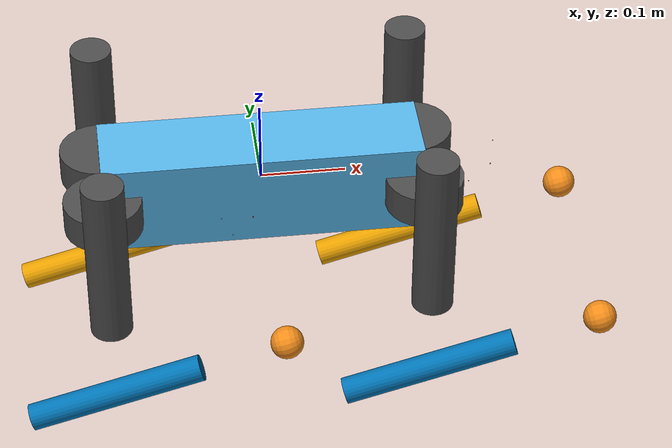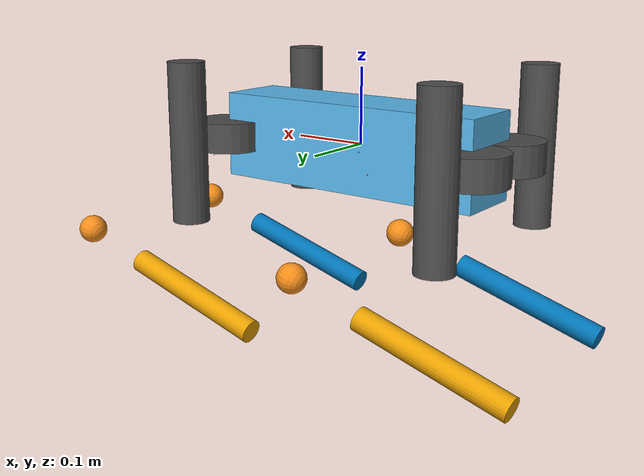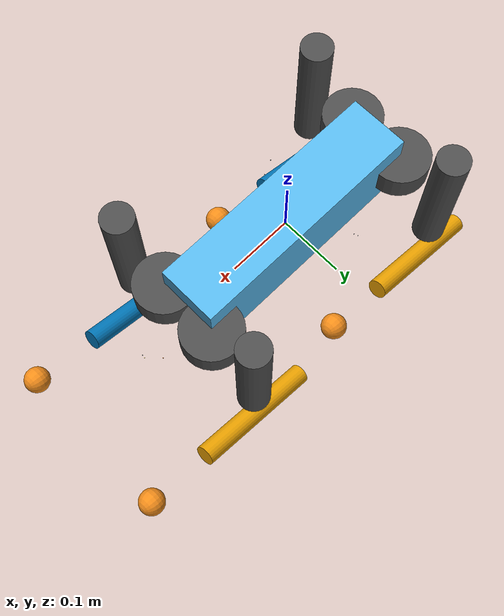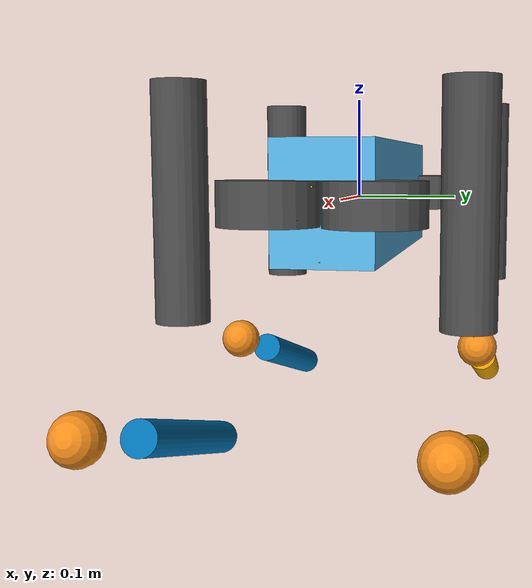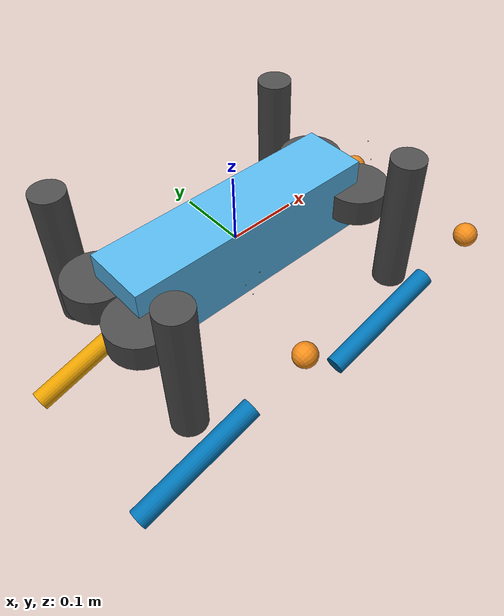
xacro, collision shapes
<?xml version="1.0" ?>
<!-- |    ROS2 Compatible Go1 Robot URDF                                                | -->
<!-- |    Gazebo Harmonic + ros2_control                                               | -->
<!-- |    完整无省略版 - Unitree Go1 四足机器人                                       | -->
<robot name="go1" xmlns:xacro="http://wiki.ros.org/xacro">

  <!-- 包含参数文件 -->
  <xacro:include filename="$(find go1_description)/xacro/go1_urdf_parameter.xacro" />

  <!-- 常量定义 -->
  <!-- PI is already defined in the parameter file -->

  <!-- ===================== 基础材料定义 ===================== -->
  <material name="black">
    <color rgba="0.0 0.0 0.0 1.0"/>
  </material>
  <material name="blue">
    <color rgba="0.0 0.0 0.8 1.0"/>
  </material>
  <material name="green">
    <color rgba="0.0 0.8 0.0 1.0"/>
  </material>
  <material name="grey">
    <color rgba="0.2 0.2 0.2 1.0"/>
  </material>
  <material name="silver">
    <color rgba="0.9137 0.9137 0.8471 1.0"/>
  </material>
  <material name="orange">
    <color rgba="1.0 0.4235 0.0392 1.0"/>
  </material>
  <material name="brown">
    <color rgba="0.8706 0.8118 0.7647 1.0"/>
  </material>
  <material name="red">
    <color rgba="0.8 0.0 0.0 1.0"/>
  </material>
  <material name="white">
    <color rgba="1.0 1.0 1.0 1.0"/>
  </material>

  <!-- ===================== ROS2 CONTROL 核心插件 ===================== -->
  <gazebo>
    <plugin filename="libgazebo_ros2_control.so" name="gazebo_ros2_control">
      <robot_param>robot_description</robot_param>
      <robot_param_node>robot_state_publisher</robot_param_node>
      <parameters>$(find go1_description)/config/robot_control.yaml</parameters>
    </plugin>
  </gazebo>

  <!-- ===================== 外力施加插件 (ROS2) ===================== -->
  <gazebo>
    <plugin filename="libgazebo_ros_force.so" name="gazebo_ros_force">
      <body_name>trunk</body_name>
      <topic_name>${topic_force}</topic_name>
      <ros2>true</ros2>
    </plugin>
  </gazebo>

  <!-- ===================== IMU 传感器 (ROS2) ===================== -->
  <gazebo reference="imu_link">
    <gravity>true</gravity>
    <sensor name="imu_sensor" type="imu">
      <always_on>true</always_on>
      <update_rate>${imu_update_rate}</update_rate>
      <visualize>${imu_visualize}</visualize>
      <plugin filename="libgazebo_ros2_imu.so" name="imu_plugin">
        <frame_id>imu_link</frame_id>
        <topic_name>${topic_imu}</topic_name>
        <update_rate>${imu_update_rate}.0</update_rate>
        <angular_velocity_stdev>0.0</angular_velocity_stdev>
        <linear_acceleration_stdev>0.0</linear_acceleration_stdev>
        <orientation_stdev>0.0</orientation_stdev>
      </plugin>
      <pose>0 0 0 0 0 0</pose>
    </sensor>
  </gazebo>

  <!-- ===================== 深度相机 (ROS2) ===================== -->
  <gazebo reference="camera_face">
    <sensor name="camera_face_camera" type="depth">
      <update_rate>${camera_update_rate}</update_rate>
      <camera>
        <horizontal_fov>${camera_horizontal_fov}</horizontal_fov>
        <image>
          <width>${camera_image_width}</width>
          <height>${camera_image_height}</height>
          <format>R8G8B8</format>
        </image>
        <clip>
          <near>${camera_near_clip}</near>
          <far>${camera_far_clip}</far>
        </clip>
      </camera>
      <plugin filename="libgazebo_ros2_camera.so" name="camera_face_controller">
        <frame_name>camera_optical_face</frame_name>
        <camera_name>camera_face</camera_name>
        <image_topic>/camera_face/${topic_camera_color}</image_topic>
        <camera_info_topic>/camera_face/color/camera_info</camera_info_topic>
        <depth_image_topic>/camera_face/${topic_camera_depth}</depth_image_topic>
        <depth_camera_info_topic>/camera_face/depth/camera_info</depth_camera_info_topic>
        <point_cloud_topic>/camera_face/${topic_camera_points}</point_cloud_topic>
        <min_depth>${camera_min_depth}</min_depth>
        <max_depth>${camera_max_depth}</max_depth>
      </plugin>
    </sensor>
  </gazebo>

  <gazebo reference="camera_chin">
    <sensor name="camera_chin_camera" type="depth">
      <update_rate>${camera_update_rate}</update_rate>
      <camera>
        <horizontal_fov>${camera_horizontal_fov}</horizontal_fov>
        <image>
          <width>${camera_image_width}</width>
          <height>${camera_image_height}</height>
          <format>R8G8B8</format>
        </image>
        <clip>
          <near>${camera_near_clip}</near>
          <far>${camera_far_clip}</far>
        </clip>
      </camera>
      <plugin filename="libgazebo_ros2_camera.so" name="camera_chin_controller">
        <frame_name>camera_optical_chin</frame_name>
        <camera_name>camera_chin</camera_name>
        <image_topic>/camera_chin/${topic_camera_color}</image_topic>
        <camera_info_topic>/camera_chin/color/camera_info</camera_info_topic>
        <depth_image_topic>/camera_chin/${topic_camera_depth}</depth_image_topic>
        <depth_camera_info_topic>/camera_chin/depth/camera_info</depth_camera_info_topic>
        <point_cloud_topic>/camera_chin/${topic_camera_points}</point_cloud_topic>
        <min_depth>${camera_min_depth}</min_depth>
        <max_depth>${camera_max_depth}</max_depth>
      </plugin>
    </sensor>
  </gazebo>

  <gazebo reference="camera_left">
    <sensor name="camera_left_camera" type="depth">
      <update_rate>${camera_update_rate}</update_rate>
      <camera>
        <horizontal_fov>${camera_horizontal_fov}</horizontal_fov>
        <image>
          <width>${camera_image_width}</width>
          <height>${camera_image_height}</height>
          <format>R8G8B8</format>
        </image>
        <clip>
          <near>${camera_near_clip}</near>
          <far>${camera_far_clip}</far>
        </clip>
      </camera>
      <plugin filename="libgazebo_ros2_camera.so" name="camera_left_controller">
        <frame_name>camera_optical_left</frame_name>
        <camera_name>camera_left</camera_name>
        <image_topic>/camera_left/${topic_camera_color}</image_topic>
        <camera_info_topic>/camera_left/color/camera_info</camera_info_topic>
        <depth_image_topic>/camera_left/${topic_camera_depth}</depth_image_topic>
        <depth_camera_info_topic>/camera_left/depth/camera_info</depth_camera_info_topic>
        <point_cloud_topic>/camera_left/${topic_camera_points}</point_cloud_topic>
        <min_depth>${camera_min_depth}</min_depth>
        <max_depth>${camera_max_depth}</max_depth>
      </plugin>
    </sensor>
  </gazebo>

  <gazebo reference="camera_right">
    <sensor name="camera_right_camera" type="depth">
      <update_rate>${camera_update_rate}</update_rate>
      <camera>
        <horizontal_fov>${camera_horizontal_fov}</horizontal_fov>
        <image>
          <width>${camera_image_width}</width>
          <height>${camera_image_height}</height>
          <format>R8G8B8</format>
        </image>
        <clip>
          <near>${camera_near_clip}</near>
          <far>${camera_far_clip}</far>
        </clip>
      </camera>
      <plugin filename="libgazebo_ros2_camera.so" name="camera_right_controller">
        <frame_name>camera_optical_right</frame_name>
        <camera_name>camera_right</camera_name>
        <image_topic>/camera_right/${topic_camera_color}</image_topic>
        <camera_info_topic>/camera_right/color/camera_info</camera_info_topic>
        <depth_image_topic>/camera_right/${topic_camera_depth}</depth_image_topic>
        <depth_camera_info_topic>/camera_right/depth/camera_info</depth_camera_info_topic>
        <point_cloud_topic>/camera_right/${topic_camera_points}</point_cloud_topic>
        <min_depth>${camera_min_depth}</min_depth>
        <max_depth>${camera_max_depth}</max_depth>
      </plugin>
    </sensor>
  </gazebo>

  <gazebo reference="camera_rearDown">
    <sensor name="camera_rearDown_camera" type="depth">
      <update_rate>${camera_update_rate}</update_rate>
      <camera>
        <horizontal_fov>${camera_horizontal_fov}</horizontal_fov>
        <image>
          <width>${camera_image_width}</width>
          <height>${camera_image_height}</height>
          <format>R8G8B8</format>
        </image>
        <clip>
          <near>${camera_near_clip}</near>
          <far>${camera_far_clip}</far>
        </clip>
      </camera>
      <plugin filename="libgazebo_ros2_camera.so" name="camera_rearDown_controller">
        <frame_name>camera_optical_rearDown</frame_name>
        <camera_name>camera_rearDown</camera_name>
        <image_topic>/camera_rearDown/${topic_camera_color}</image_topic>
        <camera_info_topic>/camera_rearDown/color/camera_info</camera_info_topic>
        <depth_image_topic>/camera_rearDown/${topic_camera_depth}</depth_image_topic>
        <depth_camera_info_topic>/camera_rearDown/depth/camera_info</depth_camera_info_topic>
        <point_cloud_topic>/camera_rearDown/${topic_camera_points}</point_cloud_topic>
        <min_depth>${camera_min_depth}</min_depth>
        <max_depth>${camera_max_depth}</max_depth>
      </plugin>
    </sensor>
  </gazebo>

  <!-- ===================== 足端接触传感器 ===================== -->
  <gazebo reference="FR_calf">
    <sensor name="FR_foot_contact" type="contact">
      <update_rate>${foot_contact_update_rate}</update_rate>
      <plugin filename="libFootContactPlugin.so" name="FR_contactPlugin">
        <ros2>true</ros2>
      </plugin>
      <contact>
        <collision>FR_foot_collision</collision>
      </contact>
    </sensor>
  </gazebo>
  <gazebo reference="FL_calf">
    <sensor name="FL_foot_contact" type="contact">
      <update_rate>${foot_contact_update_rate}</update_rate>
      <plugin filename="libFootContactPlugin.so" name="FL_contactPlugin">
        <ros2>true</ros2>
      </plugin>
      <contact>
        <collision>FL_foot_collision</collision>
      </contact>
    </sensor>
  </gazebo>
  <gazebo reference="RR_calf">
    <sensor name="RR_foot_contact" type="contact">
      <update_rate>${foot_contact_update_rate}</update_rate>
      <plugin filename="libFootContactPlugin.so" name="RR_contactPlugin">
        <ros2>true</ros2>
      </plugin>
      <contact>
        <collision>RR_foot_collision</collision>
      </contact>
    </sensor>
  </gazebo>
  <gazebo reference="RL_calf">
    <sensor name="RL_foot_contact" type="contact">
      <update_rate>${foot_contact_update_rate}</update_rate>
      <plugin filename="libFootContactPlugin.so" name="RL_contactPlugin">
        <ros2>true</ros2>
      </plugin>
      <contact>
        <collision>RL_foot_collision</collision>
      </contact>
    </sensor>
  </gazebo>

  <!-- ===================== 足端力可视化插件 (ROS2) ===================== -->
  <gazebo reference="FR_foot">
    <visual>
      <plugin filename="libDrawForcePlugin.so" name="FR_drawForcePlugin">
        <topicName>FR_foot_contact</topicName>
      </plugin>
    </visual>
  </gazebo>
  <gazebo reference="FL_foot">
    <visual>
      <plugin filename="libDrawForcePlugin.so" name="FL_drawForcePlugin">
        <topicName>FL_foot_contact</topicName>
      </plugin>
    </visual>
  </gazebo>
  <gazebo reference="RR_foot">
    <visual>
      <plugin filename="libDrawForcePlugin.so" name="RR_drawForcePlugin">
        <topicName>RR_foot_contact</topicName>
      </plugin>
    </visual>
  </gazebo>
  <gazebo reference="RL_foot">
    <visual>
      <plugin filename="libDrawForcePlugin.so" name="RL_drawForcePlugin">
        <topicName>RL_foot_contact</topicName>
      </plugin>
    </visual>
  </gazebo>

  <!-- ===================== 全局物理属性配置 ===================== -->
  <gazebo reference="base">
    <material>Gazebo/Green</material>
    <turnGravityOff>false</turnGravityOff>
  </gazebo>
  <gazebo reference="trunk">
    <mu1>${trunk_mu1}</mu1>
    <mu2>${trunk_mu2}</mu2>
    <kp value="${trunk_kp}"/>
    <kd value="${trunk_kd}"/>
  </gazebo>
  <gazebo reference="imu_link">
    <mu1>0.2</mu1>
    <mu2>0.2</mu2>
    <material>Gazebo/Red</material>
  </gazebo>
  <gazebo reference="depthCamera_link_left">
    <mu1>0.2</mu1>
    <mu2>0.2</mu2>
    <material>Gazebo/Blue</material>
  </gazebo>

  <!-- ===================== 腿部物理属性 ===================== -->
  <!-- 前右 FR -->
  <gazebo reference="FR_hip">
    <mu1>${leg_mu1}</mu1>
    <mu2>${leg_mu2}</mu2>
    <material>Gazebo/DarkGrey</material>
  </gazebo>
  <gazebo reference="FR_thigh">
    <mu1>${leg_mu1}</mu1>
    <mu2>${leg_mu2}</mu2>
    <self_collide>true</self_collide>
    <material>Gazebo/DarkGrey</material>
    <kp value="${leg_kp}"/>
    <kd value="${leg_kd}"/>
  </gazebo>
  <gazebo reference="FR_calf">
    <mu1>${leg_mu1}</mu1>
    <mu2>${leg_mu2}</mu2>
    <self_collide>true</self_collide>
  </gazebo>
  <gazebo reference="FR_foot">
    <mu1>${foot_mu1}</mu1>
    <mu2>${foot_mu2}</mu2>
    <self_collide>true</self_collide>
    <material>Gazebo/Orange</material>
    <kp value="${foot_kp}"/>
    <kd value="${foot_kd}"/>
  </gazebo>

  <!-- 前左 FL -->
  <gazebo reference="FL_hip">
    <mu1>${leg_mu1}</mu1>
    <mu2>${leg_mu2}</mu2>
    <material>Gazebo/DarkGrey</material>
  </gazebo>
  <gazebo reference="FL_thigh">
    <mu1>${leg_mu1}</mu1>
    <mu2>${leg_mu2}</mu2>
    <self_collide>true</self_collide>
    <material>Gazebo/DarkGrey</material>
    <kp value="${leg_kp}"/>
    <kd value="${leg_kd}"/>
  </gazebo>
  <gazebo reference="FL_calf">
    <mu1>${leg_mu1}</mu1>
    <mu2>${leg_mu2}</mu2>
    <self_collide>true</self_collide>
  </gazebo>
  <gazebo reference="FL_foot">
    <mu1>${foot_mu1}</mu1>
    <mu2>${foot_mu2}</mu2>
    <self_collide>true</self_collide>
    <material>Gazebo/Orange</material>
    <kp value="${foot_kp}"/>
    <kd value="${foot_kd}"/>
  </gazebo>

  <!-- 后右 RR -->
  <gazebo reference="RR_hip">
    <mu1>${leg_mu1}</mu1>
    <mu2>${leg_mu2}</mu2>
    <material>Gazebo/DarkGrey</material>
  </gazebo>
  <gazebo reference="RR_thigh">
    <mu1>${leg_mu1}</mu1>
    <mu2>${leg_mu2}</mu2>
    <self_collide>true</self_collide>
    <material>Gazebo/DarkGrey</material>
    <kp value="${leg_kp}"/>
    <kd value="${leg_kd}"/>
  </gazebo>
  <gazebo reference="RR_calf">
    <mu1>${leg_mu1}</mu1>
    <mu2>${leg_mu2}</mu2>
    <self_collide>true</self_collide>
  </gazebo>
  <gazebo reference="RR_foot">
    <mu1>${foot_mu1}</mu1>
    <mu2>${foot_mu2}</mu2>
    <self_collide>true</self_collide>
    <material>Gazebo/Orange</material>
    <kp value="${foot_kp}"/>
    <kd value="${foot_kd}"/>
  </gazebo>

  <!-- 后左 RL -->
  <gazebo reference="RL_hip">
    <mu1>${leg_mu1}</mu1>
    <mu2>${leg_mu2}</mu2>
    <material>Gazebo/DarkGrey</material>
  </gazebo>
  <gazebo reference="RL_thigh">
    <mu1>${leg_mu1}</mu1>
    <mu2>${leg_mu2}</mu2>
    <self_collide>true</self_collide>
    <material>Gazebo/DarkGrey</material>
    <kp value="${leg_kp}"/>
    <kd value="${leg_kd}"/>
  </gazebo>
  <gazebo reference="RL_calf">
    <mu1>${leg_mu1}</mu1>
    <mu2>${leg_mu2}</mu2>
    <self_collide>true</self_collide>
  </gazebo>
  <gazebo reference="RL_foot">
    <mu1>${foot_mu1}</mu1>
    <mu2>${foot_mu2}</mu2>
    <self_collide>true</self_collide>
    <material>Gazebo/Orange</material>
    <kp value="${foot_kp}"/>
    <kd value="${foot_kd}"/>
  </gazebo>

  <!-- ===================== 基础连杆与关节 ===================== -->
  <!-- 调试模式 -->
  <xacro:if value="${debug_enabled}">
    <link name="world"/>
    <joint name="base_static_joint" type="fixed">
      <origin rpy="0 0 0" xyz="${debug_world_joint_position}"/>
      <parent link="world"/>
      <child link="base"/>
    </joint>
  </xacro:if>

  <!-- 根坐标系 -->
  <link name="base">
    <inertial>
      <mass value="${base_mass}"/>
      <inertia ixx="${base_ixx}" ixy="${base_ixy}" ixz="${base_ixz}" iyy="${base_iyy}" iyz="${base_iyz}" izz="${base_izz}"/>
    </inertial>
    <visual>
      <geometry><box size="0.001 0.001 0.001"/></geometry>
    </visual>
  </link>

  <!-- 基座固定关节 -->
  <joint name="floating_base" type="fixed">
    <origin rpy="0 0 0" xyz="${floating_base_position}"/>
    <parent link="base"/>
    <child link="trunk"/>
  </joint>

  <!-- 躯干连杆 -->
  <link name="trunk">
    <visual>
      <origin rpy="0 0 0" xyz="0 0 0"/>
      <geometry>
        <mesh filename="package://go1_description/meshes/trunk.dae" scale="1 1 1"/>
      </geometry>
    </visual>
    <collision>
      <origin rpy="0 0 0" xyz="0 0 0"/>
      <geometry><box size="${trunk_collision_size}"/></geometry>
    </collision>
    <inertial>
      <origin rpy="0 0 0" xyz="${trunk_com}"/>
      <mass value="${trunk_mass}"/>
      <inertia ixx="${trunk_ixx}" ixy="${trunk_ixy}" ixz="${trunk_ixz}" iyy="${trunk_iyy}" iyz="${trunk_iyz}" izz="${trunk_izz}"/>
    </inertial>
  </link>

  <!-- IMU 关节+连杆 -->
  <joint name="imu_joint" type="fixed">
    <parent link="trunk"/>
    <child link="imu_link"/>
    <origin rpy="0 0 0" xyz="${imu_joint_position}"/>
  </joint>
  <link name="imu_link">
    <inertial>
      <mass value="${imu_link_mass}"/>
      <inertia ixx="0.0001" ixy="0" ixz="0" iyy="0.0001" iyz="0" izz="0.0001"/>
    </inertial>
    <visual><geometry><box size="${imu_link_box_size}"/></geometry></visual>
    <collision><geometry><box size="${imu_link_box_size}"/></geometry></collision>
  </link>

  <!-- ===================== 深度相机 ===================== -->
  <!-- 面部相机 -->
  <joint name="camera_joint_face" type="fixed">
    <origin rpy="${PI} 0 0" xyz="${depth_camera_face}"/>
    <parent link="trunk"/>
    <child link="camera_face"/>
  </joint>
  <link name="camera_face">
    <collision>
      <origin xyz="0 0 0" rpy="0 0 0"/>
      <geometry>
        <box size="${depth_camera_box_size}"/>
      </geometry>
    </collision>
    <visual>
      <origin xyz="0 0 0" rpy="0 0 0"/>
      <geometry>
        <mesh filename="package://go1_description/meshes/depthCamera.dae" scale="1 1 1"/>
      </geometry>
    </visual>
    <inertial>
      <mass value="${depth_camera_mass}" />
      <origin xyz="0 0 0" rpy="0 0 0"/>
      <inertia ixx="${depth_camera_ixx}" ixy="${depth_camera_ixy}" ixz="${depth_camera_ixz}" iyy="${depth_camera_iyy}" iyz="${depth_camera_iyz}" izz="${depth_camera_izz}" />
    </inertial>
  </link>
  <joint name="camera_optical_joint_face" type="fixed">
    <origin xyz="0 0 0" rpy="${-PI/2} 0 ${-PI/2}"/>
    <parent link="camera_face"/>
    <child link="camera_optical_face"/>
  </joint>
  <link name="camera_optical_face">
  </link>

  <!-- 下巴相机 -->
  <joint name="camera_joint_chin" type="fixed">
    <origin rpy="${PI} ${PI/2} 0" xyz="${depth_camera_chin}"/>
    <parent link="trunk"/>
    <child link="camera_chin"/>
  </joint>
  <link name="camera_chin">
    <collision>
      <origin xyz="0 0 0" rpy="0 0 0"/>
      <geometry>
        <box size="${depth_camera_box_size}"/>
      </geometry>
    </collision>
    <visual>
      <origin xyz="0 0 0" rpy="0 0 0"/>
      <geometry>
        <mesh filename="package://go1_description/meshes/depthCamera.dae" scale="1 1 1"/>
      </geometry>
    </visual>
    <inertial>
      <mass value="${depth_camera_mass}" />
      <origin xyz="0 0 0" rpy="0 0 0"/>
      <inertia ixx="${depth_camera_ixx}" ixy="${depth_camera_ixy}" ixz="${depth_camera_ixz}" iyy="${depth_camera_iyy}" iyz="${depth_camera_iyz}" izz="${depth_camera_izz}" />
    </inertial>
  </link>
  <joint name="camera_optical_joint_chin" type="fixed">
    <origin xyz="0 0 0" rpy="${-PI/2} 0 ${-PI/2}"/>
    <parent link="camera_chin"/>
    <child link="camera_optical_chin"/>
  </joint>
  <link name="camera_optical_chin">
  </link>

  <!-- 左相机 -->
  <joint name="camera_joint_left" type="fixed">
    <origin rpy="${PI} 0.2618 ${PI/2}" xyz="${depth_camera_left}"/>
    <parent link="trunk"/>
    <child link="camera_left"/>
  </joint>
  <link name="camera_left">
    <collision>
      <origin xyz="0 0 0" rpy="0 0 0"/>
      <geometry>
        <box size="${depth_camera_box_size}"/>
      </geometry>
    </collision>
    <visual>
      <origin xyz="0 0 0" rpy="0 0 0"/>
      <geometry>
        <mesh filename="package://go1_description/meshes/depthCamera.dae" scale="1 1 1"/>
      </geometry>
    </visual>
    <inertial>
      <mass value="${depth_camera_mass}" />
      <origin xyz="0 0 0" rpy="0 0 0"/>
      <inertia ixx="${depth_camera_ixx}" ixy="${depth_camera_ixy}" ixz="${depth_camera_ixz}" iyy="${depth_camera_iyy}" iyz="${depth_camera_iyz}" izz="${depth_camera_izz}" />
    </inertial>
  </link>
  <joint name="camera_optical_joint_left" type="fixed">
    <origin xyz="0 0 0" rpy="${-PI/2} 0 ${-PI/2}"/>
    <parent link="camera_left"/>
    <child link="camera_optical_left"/>
  </joint>
  <link name="camera_optical_left">
  </link>

  <!-- 右相机 -->
  <joint name="camera_joint_right" type="fixed">
    <origin rpy="${PI} 0.2618 ${-PI/2}" xyz="${depth_camera_right}"/>
    <parent link="trunk"/>
    <child link="camera_right"/>
  </joint>
  <link name="camera_right">
    <collision>
      <origin xyz="0 0 0" rpy="0 0 0"/>
      <geometry>
        <box size="${depth_camera_box_size}"/>
      </geometry>
    </collision>
    <visual>
      <origin xyz="0 0 0" rpy="0 0 0"/>
      <geometry>
        <mesh filename="package://go1_description/meshes/depthCamera.dae" scale="1 1 1"/>
      </geometry>
    </visual>
    <inertial>
      <mass value="${depth_camera_mass}" />
      <origin xyz="0 0 0" rpy="0 0 0"/>
      <inertia ixx="${depth_camera_ixx}" ixy="${depth_camera_ixy}" ixz="${depth_camera_ixz}" iyy="${depth_camera_iyy}" iyz="${depth_camera_iyz}" izz="${depth_camera_izz}" />
    </inertial>
  </link>
  <joint name="camera_optical_joint_right" type="fixed">
    <origin xyz="0 0 0" rpy="${-PI/2} 0 ${-PI/2}"/>
    <parent link="camera_right"/>
    <child link="camera_optical_right"/>
  </joint>
  <link name="camera_optical_right">
  </link>

  <!-- 后下相机 -->
  <joint name="camera_joint_rearDown" type="fixed">
    <origin rpy="${PI} ${PI/2} 0" xyz="${depth_camera_rearDown}"/>
    <parent link="trunk"/>
    <child link="camera_rearDown"/>
  </joint>
  <link name="camera_rearDown">
    <collision>
      <origin xyz="0 0 0" rpy="0 0 0"/>
      <geometry>
        <box size="${depth_camera_box_size}"/>
      </geometry>
    </collision>
    <visual>
      <origin xyz="0 0 0" rpy="0 0 0"/>
      <geometry>
        <mesh filename="package://go1_description/meshes/depthCamera.dae" scale="1 1 1"/>
      </geometry>
    </visual>
    <inertial>
      <mass value="${depth_camera_mass}" />
      <origin xyz="0 0 0" rpy="0 0 0"/>
      <inertia ixx="${depth_camera_ixx}" ixy="${depth_camera_ixy}" ixz="${depth_camera_ixz}" iyy="${depth_camera_iyy}" iyz="${depth_camera_iyz}" izz="${depth_camera_izz}" />
    </inertial>
  </link>
  <joint name="camera_optical_joint_rearDown" type="fixed">
    <origin xyz="0 0 0" rpy="${-PI/2} 0 ${-PI/2}"/>
    <parent link="camera_rearDown"/>
    <child link="camera_optical_rearDown"/>
  </joint>
  <link name="camera_optical_rearDown">
  </link>

  <!-- ===================== 超声波传感器 ===================== -->
  <!-- 左超声波传感器 -->
  <joint name="ultraSound_joint_left" type="fixed">
    <origin rpy="0 0.2618 ${PI/2}" xyz="${ultrasound_left}"/>
    <parent link="trunk"/>
    <child link="ultraSound_left"/>
  </joint>
  <link name="ultraSound_left">
    <collision>
      <origin xyz="0 0 0" rpy="0 0 0"/>
      <geometry>
        <box size="${ultrasound_box_size}"/>
      </geometry>
    </collision>
    <visual>
      <origin xyz="0 0 0" rpy="0 0 0"/>
      <geometry>
        <mesh filename="package://go1_description/meshes/ultraSound.dae" scale="1 1 1"/>
      </geometry>
      <material name="black"/>
    </visual>
    <inertial>
      <mass value="${ultrasound_mass}" />
      <origin xyz="0 0 0" rpy="0 0 0"/>
      <inertia ixx="${ultrasound_ixx}" ixy="${ultrasound_ixy}" ixz="${ultrasound_ixz}" iyy="${ultrasound_iyy}" iyz="${ultrasound_iyz}" izz="${ultrasound_izz}" />
    </inertial>
  </link>

  <!-- 右超声波传感器 -->
  <joint name="ultraSound_joint_right" type="fixed">
    <origin rpy="0 0.2618 ${-PI/2}" xyz="${ultrasound_right}"/>
    <parent link="trunk"/>
    <child link="ultraSound_right"/>
  </joint>
  <link name="ultraSound_right">
    <collision>
      <origin xyz="0 0 0" rpy="0 0 0"/>
      <geometry>
        <box size="${ultrasound_box_size}"/>
      </geometry>
    </collision>
    <visual>
      <origin xyz="0 0 0" rpy="0 0 0"/>
      <geometry>
        <mesh filename="package://go1_description/meshes/ultraSound.dae" scale="1 1 1"/>
      </geometry>
      <material name="black"/>
    </visual>
    <inertial>
      <mass value="${ultrasound_mass}" />
      <origin xyz="0 0 0" rpy="0 0 0"/>
      <inertia ixx="${ultrasound_ixx}" ixy="${ultrasound_ixy}" ixz="${ultrasound_ixz}" iyy="${ultrasound_iyy}" iyz="${ultrasound_iyz}" izz="${ultrasound_izz}" />
    </inertial>
  </link>

  <!-- 面部超声波传感器 -->
  <joint name="ultraSound_joint_face" type="fixed">
    <origin rpy="0 0 0" xyz="${ultrasound_face}"/>
    <parent link="trunk"/>
    <child link="ultraSound_face"/>
  </joint>
  <link name="ultraSound_face">
    <collision>
      <origin xyz="0 0 0" rpy="0 0 0"/>
      <geometry>
        <box size="${ultrasound_box_size}"/>
      </geometry>
    </collision>
    <visual>
      <origin xyz="0 0 0" rpy="0 0 0"/>
      <geometry>
        <mesh filename="package://go1_description/meshes/ultraSound.dae" scale="1 1 1"/>
      </geometry>
      <material name="black"/>
    </visual>
    <inertial>
      <mass value="${ultrasound_mass}" />
      <origin xyz="0 0 0" rpy="0 0 0"/>
      <inertia ixx="${ultrasound_ixx}" ixy="${ultrasound_ixy}" ixz="${ultrasound_ixz}" iyy="${ultrasound_iyy}" iyz="${ultrasound_iyz}" izz="${ultrasound_izz}" />
    </inertial>
  </link>

  <!-- ===================== 激光雷达 ===================== -->
  <!-- 左激光雷达 -->
  <joint name="camera_laserscan_joint_left" type="fixed">
    <origin rpy="0 0.2618 0" xyz="0 0 0"/>
    <parent link="camera_left"/>
    <child link="camera_laserscan_link_left"/>
  </joint>
  <link name="camera_laserscan_link_left">
  </link>

  <!-- 右激光雷达 -->
  <joint name="camera_laserscan_joint_right" type="fixed">
    <origin rpy="0 0.2618 0" xyz="0 0 0"/>
    <parent link="camera_right"/>
    <child link="camera_laserscan_link_right"/>
  </joint>
  <link name="camera_laserscan_link_right">
  </link>

  <!-- ===================== 前右腿 FR (3个旋转关节) ===================== -->
  <joint name="FR_hip_joint" type="revolute">
    <origin rpy="0 0 0" xyz="${FR_hip_joint_origin}"/>
    <parent link="trunk"/>
    <child link="FR_hip"/>
    <axis xyz="1 0 0"/>
    <dynamics damping="${hip_damping}" friction="${hip_friction}"/>
    <limit effort="${hip_effort_limit}" lower="${hip_lower_limit}" upper="${hip_upper_limit}" velocity="${hip_velocity_limit}"/>
  </joint>
  <link name="FR_hip">
    <inertial>
      <mass value="${hip_mass}"/>
      <inertia ixx="${hip_ixx}" ixy="${hip_ixy}" ixz="${hip_ixz}" iyy="${hip_iyy}" iyz="${hip_iyz}" izz="${hip_izz}"/>
    </inertial>
    <visual><geometry><cylinder length="${hip_cylinder_length}" radius="${hip_cylinder_radius}"/></geometry></visual>
    <collision><geometry><cylinder length="${hip_cylinder_length}" radius="${hip_cylinder_radius}"/></geometry></collision>
  </link>

  <joint name="FR_thigh_joint" type="revolute">
    <origin rpy="0 0 0" xyz="${FR_thigh_joint_origin}"/>
    <parent link="FR_hip"/>
    <child link="FR_thigh"/>
    <axis xyz="0 1 0"/>
    <dynamics damping="${thigh_damping}" friction="${thigh_friction}"/>
    <limit effort="${thigh_effort_limit}" lower="${thigh_lower_limit}" upper="${thigh_upper_limit}" velocity="${thigh_velocity_limit}"/>
  </joint>
  <link name="FR_thigh">
    <inertial>
      <mass value="${thigh_mass}"/>
      <inertia ixx="${thigh_ixx}" ixy="${thigh_ixy}" ixz="${thigh_ixz}" iyy="${thigh_iyy}" iyz="${thigh_iyz}" izz="${thigh_izz}"/>
    </inertial>
    <visual><geometry><cylinder length="${thigh_cylinder_length}" radius="${thigh_cylinder_radius}"/></geometry></visual>
    <collision><geometry><cylinder length="${thigh_cylinder_length}" radius="${thigh_cylinder_radius}"/></geometry></collision>
  </link>

  <joint name="FR_calf_joint" type="revolute">
    <origin rpy="0 0 0" xyz="${FR_calf_joint_origin}"/>
    <parent link="FR_thigh"/>
    <child link="FR_calf"/>
    <axis xyz="0 1 0"/>
    <dynamics damping="${calf_damping}" friction="${calf_friction}"/>
    <limit effort="${calf_effort_limit}" lower="${calf_lower_limit}" upper="${calf_upper_limit}" velocity="${calf_velocity_limit}"/>
  </joint>
  <link name="FR_calf">
    <inertial>
      <mass value="${calf_mass}"/>
      <inertia ixx="${calf_ixx}" ixy="${calf_ixy}" ixz="${calf_ixz}" iyy="${calf_iyy}" iyz="${calf_iyz}" izz="${calf_izz}"/>
    </inertial>
    <visual><geometry><cylinder length="${calf_cylinder_length}" radius="${calf_cylinder_radius}"/></geometry></visual>
    <collision><geometry><cylinder length="${calf_cylinder_length}" radius="${calf_cylinder_radius}"/></geometry></collision>
  </link>

  <joint name="FR_foot_joint" type="fixed">
    <origin rpy="0 0 0" xyz="${FR_foot_joint_origin}"/>
    <parent link="FR_calf"/>
    <child link="FR_foot"/>
  </joint>
  <link name="FR_foot">
    <collision name="FR_foot_collision">
      <geometry><sphere radius="${foot_sphere_radius}"/></geometry>
    </collision>
    <visual><geometry><sphere radius="${foot_sphere_radius}"/></geometry></visual>
    <inertial>
      <mass value="${foot_mass}"/>
      <inertia ixx="${foot_ixx}" ixy="${foot_ixy}" ixz="${foot_ixz}" iyy="${foot_iyy}" iyz="${foot_iyz}" izz="${foot_izz}"/>
    </inertial>
  </link>

  <!-- ===================== 前左腿 FL (3个旋转关节) ===================== -->
  <joint name="FL_hip_joint" type="revolute">
    <origin rpy="0 0 0" xyz="${FL_hip_joint_origin}"/>
    <parent link="trunk"/>
    <child link="FL_hip"/>
    <axis xyz="1 0 0"/>
    <dynamics damping="${hip_damping}" friction="${hip_friction}"/>
    <limit effort="${hip_effort_limit}" lower="${hip_lower_limit}" upper="${hip_upper_limit}" velocity="${hip_velocity_limit}"/>
  </joint>
  <link name="FL_hip">
    <inertial>
      <mass value="${hip_mass}"/>
      <inertia ixx="${hip_ixx}" ixy="${hip_ixy}" ixz="${hip_ixz}" iyy="${hip_iyy}" iyz="${hip_iyz}" izz="${hip_izz}"/>
    </inertial>
    <visual><geometry><cylinder length="${hip_cylinder_length}" radius="${hip_cylinder_radius}"/></geometry></visual>
    <collision><geometry><cylinder length="${hip_cylinder_length}" radius="${hip_cylinder_radius}"/></geometry></collision>
  </link>

  <joint name="FL_thigh_joint" type="revolute">
    <origin rpy="0 0 0" xyz="${FL_thigh_joint_origin}"/>
    <parent link="FL_hip"/>
    <child link="FL_thigh"/>
    <axis xyz="0 1 0"/>
    <dynamics damping="${thigh_damping}" friction="${thigh_friction}"/>
    <limit effort="${thigh_effort_limit}" lower="${thigh_lower_limit}" upper="${thigh_upper_limit}" velocity="${thigh_velocity_limit}"/>
  </joint>
  <link name="FL_thigh">
    <inertial>
      <mass value="${thigh_mass}"/>
      <inertia ixx="${thigh_ixx}" ixy="${thigh_ixy}" ixz="${thigh_ixz}" iyy="${thigh_iyy}" iyz="${thigh_iyz}" izz="${thigh_izz}"/>
    </inertial>
    <visual><geometry><cylinder length="${thigh_cylinder_length}" radius="${thigh_cylinder_radius}"/></geometry></visual>
    <collision><geometry><cylinder length="${thigh_cylinder_length}" radius="${thigh_cylinder_radius}"/></geometry></collision>
  </link>

  <joint name="FL_calf_joint" type="revolute">
    <origin rpy="0 0 0" xyz="${FL_calf_joint_origin}"/>
    <parent link="FL_thigh"/>
    <child link="FL_calf"/>
    <axis xyz="0 1 0"/>
    <dynamics damping="${calf_damping}" friction="${calf_friction}"/>
    <limit effort="${calf_effort_limit}" lower="${calf_lower_limit}" upper="${calf_upper_limit}" velocity="${calf_velocity_limit}"/>
  </joint>
  <link name="FL_calf">
    <inertial>
      <mass value="${calf_mass}"/>
      <inertia ixx="${calf_ixx}" ixy="${calf_ixy}" ixz="${calf_ixz}" iyy="${calf_iyy}" iyz="${calf_iyz}" izz="${calf_izz}"/>
    </inertial>
    <visual><geometry><cylinder length="${calf_cylinder_length}" radius="${calf_cylinder_radius}"/></geometry></visual>
    <collision><geometry><cylinder length="${calf_cylinder_length}" radius="${calf_cylinder_radius}"/></geometry></collision>
  </link>

  <joint name="FL_foot_joint" type="fixed">
    <origin rpy="0 0 0" xyz="${FL_foot_joint_origin}"/>
    <parent link="FL_calf"/>
    <child link="FL_foot"/>
  </joint>
  <link name="FL_foot">
    <collision name="FL_foot_collision">
      <geometry><sphere radius="${foot_sphere_radius}"/></geometry>
    </collision>
    <visual><geometry><sphere radius="${foot_sphere_radius}"/></geometry></visual>
    <inertial>
      <mass value="${foot_mass}"/>
      <inertia ixx="${foot_ixx}" ixy="${foot_ixy}" ixz="${foot_ixz}" iyy="${foot_iyy}" iyz="${foot_iyz}" izz="${foot_izz}"/>
    </inertial>
  </link>

  <!-- ===================== 后右腿 RR (3个旋转关节) ===================== -->
  <joint name="RR_hip_joint" type="revolute">
    <origin rpy="0 0 0" xyz="${RR_hip_joint_origin}"/>
    <parent link="trunk"/>
    <child link="RR_hip"/>
    <axis xyz="1 0 0"/>
    <dynamics damping="${hip_damping}" friction="${hip_friction}"/>
    <limit effort="${hip_effort_limit}" lower="${hip_lower_limit}" upper="${hip_upper_limit}" velocity="${hip_velocity_limit}"/>
  </joint>
  <link name="RR_hip">
    <inertial>
      <mass value="${hip_mass}"/>
      <inertia ixx="${hip_ixx}" ixy="${hip_ixy}" ixz="${hip_ixz}" iyy="${hip_iyy}" iyz="${hip_iyz}" izz="${hip_izz}"/>
    </inertial>
    <visual><geometry><cylinder length="${hip_cylinder_length}" radius="${hip_cylinder_radius}"/></geometry></visual>
    <collision><geometry><cylinder length="${hip_cylinder_length}" radius="${hip_cylinder_radius}"/></geometry></collision>
  </link>

  <joint name="RR_thigh_joint" type="revolute">
    <origin rpy="0 0 0" xyz="${RR_thigh_joint_origin}"/>
    <parent link="RR_hip"/>
    <child link="RR_thigh"/>
    <axis xyz="0 1 0"/>
    <dynamics damping="${thigh_damping}" friction="${thigh_friction}"/>
    <limit effort="${thigh_effort_limit}" lower="${thigh_lower_limit}" upper="${thigh_upper_limit}" velocity="${thigh_velocity_limit}"/>
  </joint>
  <link name="RR_thigh">
    <inertial>
      <mass value="${thigh_mass}"/>
      <inertia ixx="${thigh_ixx}" ixy="${thigh_ixy}" ixz="${thigh_ixz}" iyy="${thigh_iyy}" iyz="${thigh_iyz}" izz="${thigh_izz}"/>
    </inertial>
    <visual><geometry><cylinder length="${thigh_cylinder_length}" radius="${thigh_cylinder_radius}"/></geometry></visual>
    <collision><geometry><cylinder length="${thigh_cylinder_length}" radius="${thigh_cylinder_radius}"/></geometry></collision>
  </link>

  <joint name="RR_calf_joint" type="revolute">
    <origin rpy="0 0 0" xyz="${RR_calf_joint_origin}"/>
    <parent link="RR_thigh"/>
    <child link="RR_calf"/>
    <axis xyz="0 1 0"/>
    <dynamics damping="${calf_damping}" friction="${calf_friction}"/>
    <limit effort="${calf_effort_limit}" lower="${calf_lower_limit}" upper="${calf_upper_limit}" velocity="${calf_velocity_limit}"/>
  </joint>
  <link name="RR_calf">
    <inertial>
      <mass value="${calf_mass}"/>
      <inertia ixx="${calf_ixx}" ixy="${calf_ixy}" ixz="${calf_ixz}" iyy="${calf_iyy}" iyz="${calf_iyz}" izz="${calf_izz}"/>
    </inertial>
    <visual><geometry><cylinder length="${calf_cylinder_length}" radius="${calf_cylinder_radius}"/></geometry></visual>
    <collision><geometry><cylinder length="${calf_cylinder_length}" radius="${calf_cylinder_radius}"/></geometry></collision>
  </link>

  <joint name="RR_foot_joint" type="fixed">
    <origin rpy="0 0 0" xyz="${RR_foot_joint_origin}"/>
    <parent link="RR_calf"/>
    <child link="RR_foot"/>
  </joint>
  <link name="RR_foot">
    <collision name="RR_foot_collision">
      <geometry><sphere radius="${foot_sphere_radius}"/></geometry>
    </collision>
    <visual><geometry><sphere radius="${foot_sphere_radius}"/></geometry></visual>
    <inertial>
      <mass value="${foot_mass}"/>
      <inertia ixx="${foot_ixx}" ixy="${foot_ixy}" ixz="${foot_ixz}" iyy="${foot_iyy}" iyz="${foot_iyz}" izz="${foot_izz}"/>
    </inertial>
  </link>

  <!-- ===================== 后左腿 RL (3个旋转关节) ===================== -->
  <joint name="RL_hip_joint" type="revolute">
    <origin rpy="0 0 0" xyz="${RL_hip_joint_origin}"/>
    <parent link="trunk"/>
    <child link="RL_hip"/>
    <axis xyz="1 0 0"/>
    <dynamics damping="${hip_damping}" friction="${hip_friction}"/>
    <limit effort="${hip_effort_limit}" lower="${hip_lower_limit}" upper="${hip_upper_limit}" velocity="${hip_velocity_limit}"/>
  </joint>
  <link name="RL_hip">
    <inertial>
      <mass value="${hip_mass}"/>
      <inertia ixx="${hip_ixx}" ixy="${hip_ixy}" ixz="${hip_ixz}" iyy="${hip_iyy}" iyz="${hip_iyz}" izz="${hip_izz}"/>
    </inertial>
    <visual><geometry><cylinder length="${hip_cylinder_length}" radius="${hip_cylinder_radius}"/></geometry></visual>
    <collision><geometry><cylinder length="${hip_cylinder_length}" radius="${hip_cylinder_radius}"/></geometry></collision>
  </link>

  <joint name="RL_thigh_joint" type="revolute">
    <origin rpy="0 0 0" xyz="${RL_thigh_joint_origin}"/>
    <parent link="RL_hip"/>
    <child link="RL_thigh"/>
    <axis xyz="0 1 0"/>
    <dynamics damping="${thigh_damping}" friction="${thigh_friction}"/>
    <limit effort="${thigh_effort_limit}" lower="${thigh_lower_limit}" upper="${thigh_upper_limit}" velocity="${thigh_velocity_limit}"/>
  </joint>
  <link name="RL_thigh">
    <inertial>
      <mass value="${thigh_mass}"/>
      <inertia ixx="${thigh_ixx}" ixy="${thigh_ixy}" ixz="${thigh_ixz}" iyy="${thigh_iyy}" iyz="${thigh_iyz}" izz="${thigh_izz}"/>
    </inertial>
    <visual><geometry><cylinder length="${thigh_cylinder_length}" radius="${thigh_cylinder_radius}"/></geometry></visual>
    <collision><geometry><cylinder length="${thigh_cylinder_length}" radius="${thigh_cylinder_radius}"/></geometry></collision>
  </link>

  <joint name="RL_calf_joint" type="revolute">
    <origin rpy="0 0 0" xyz="${RL_calf_joint_origin}"/>
    <parent link="RL_thigh"/>
    <child link="RL_calf"/>
    <axis xyz="0 1 0"/>
    <dynamics damping="${calf_damping}" friction="${calf_friction}"/>
    <limit effort="${calf_effort_limit}" lower="${calf_lower_limit}" upper="${calf_upper_limit}" velocity="${calf_velocity_limit}"/>
  </joint>
  <link name="RL_calf">
    <inertial>
      <mass value="${calf_mass}"/>
      <inertia ixx="${calf_ixx}" ixy="${calf_ixy}" ixz="${calf_ixz}" iyy="${calf_iyy}" iyz="${calf_iyz}" izz="${calf_izz}"/>
    </inertial>
    <visual><geometry><cylinder length="${calf_cylinder_length}" radius="${calf_cylinder_radius}"/></geometry></visual>
    <collision><geometry><cylinder length="${calf_cylinder_length}" radius="${calf_cylinder_radius}"/></geometry></collision>
  </link>

  <joint name="RL_foot_joint" type="fixed">
    <origin rpy="0 0 0" xyz="${RL_foot_joint_origin}"/>
    <parent link="RL_calf"/>
    <child link="RL_foot"/>
  </joint>
  <link name="RL_foot">
    <collision name="RL_foot_collision">
      <geometry><sphere radius="${foot_sphere_radius}"/></geometry>
    </collision>
    <visual><geometry><sphere radius="${foot_sphere_radius}"/></geometry></visual>
    <inertial>
      <mass value="${foot_mass}"/>
      <inertia ixx="${foot_ixx}" ixy="${foot_ixy}" ixz="${foot_ixz}" iyy="${foot_iyy}" iyz="${foot_iyz}" izz="${foot_izz}"/>
    </inertial>
  </link>

  <!-- ===================== ros2_control 传动定义 (必选！) ===================== -->
  <!-- 为12个旋转关节添加力矩传动接口 -->
  <transmission name="FR_hip_trans">
    <type>transmission_interface/SimpleTransmission</type>
    <joint name="FR_hip_joint">
      <hardwareInterface>hardware_interface/effort</hardwareInterface>
    </joint>
    <actuator name="FR_hip_motor">
      <hardwareInterface>hardware_interface/EffortJointInterface</hardwareInterface>
      <mechanicalReduction>1</mechanicalReduction>
    </actuator>
  </transmission>
  <transmission name="FR_thigh_trans">
    <type>transmission_interface/SimpleTransmission</type>
    <joint name="FR_thigh_joint">
      <hardwareInterface>hardware_interface/effort</hardwareInterface>
    </joint>
    <actuator name="FR_thigh_motor">
      <hardwareInterface>hardware_interface/EffortJointInterface</hardwareInterface>
      <mechanicalReduction>1</mechanicalReduction>
    </actuator>
  </transmission>
  <transmission name="FR_calf_trans">
    <type>transmission_interface/SimpleTransmission</type>
    <joint name="FR_calf_joint">
      <hardwareInterface>hardware_interface/effort</hardwareInterface>
    </joint>
    <actuator name="FR_calf_motor">
      <hardwareInterface>hardware_interface/EffortJointInterface</hardwareInterface>
      <mechanicalReduction>1</mechanicalReduction>
    </actuator>
  </transmission>

  <transmission name="FL_hip_trans">
    <type>transmission_interface/SimpleTransmission</type>
    <joint name="FL_hip_joint">
      <hardwareInterface>hardware_interface/effort</hardwareInterface>
    </joint>
    <actuator name="FL_hip_motor">
      <hardwareInterface>hardware_interface/EffortJointInterface</hardwareInterface>
      <mechanicalReduction>1</mechanicalReduction>
    </actuator>
  </transmission>
  <transmission name="FL_thigh_trans">
    <type>transmission_interface/SimpleTransmission</type>
    <joint name="FL_thigh_joint">
      <hardwareInterface>hardware_interface/effort</hardwareInterface>
    </joint>
    <actuator name="FL_thigh_motor">
      <hardwareInterface>hardware_interface/EffortJointInterface</hardwareInterface>
      <mechanicalReduction>1</mechanicalReduction>
    </actuator>
  </transmission>
  <transmission name="FL_calf_trans">
    <type>transmission_interface/SimpleTransmission</type>
    <joint name="FL_calf_joint">
      <hardwareInterface>hardware_interface/effort</hardwareInterface>
    </joint>
    <actuator name="FL_calf_motor">
      <hardwareInterface>hardware_interface/EffortJointInterface</hardwareInterface>
      <mechanicalReduction>1</mechanicalReduction>
    </actuator>
  </transmission>

  <transmission name="RR_hip_trans">
    <type>transmission_interface/SimpleTransmission</type>
    <joint name="RR_hip_joint">
      <hardwareInterface>hardware_interface/effort</hardwareInterface>
    </joint>
    <actuator name="RR_hip_motor">
      <hardwareInterface>hardware_interface/EffortJointInterface</hardwareInterface>
      <mechanicalReduction>1</mechanicalReduction>
    </actuator>
  </transmission>
  <transmission name="RR_thigh_trans">
    <type>transmission_interface/SimpleTransmission</type>
    <joint name="RR_thigh_joint">
      <hardwareInterface>hardware_interface/effort</hardwareInterface>
    </joint>
    <actuator name="RR_thigh_motor">
      <hardwareInterface>hardware_interface/EffortJointInterface</hardwareInterface>
      <mechanicalReduction>1</mechanicalReduction>
    </actuator>
  </transmission>
  <transmission name="RR_calf_trans">
    <type>transmission_interface/SimpleTransmission</type>
    <joint name="RR_calf_joint">
      <hardwareInterface>hardware_interface/effort</hardwareInterface>
    </joint>
    <actuator name="RR_calf_motor">
      <hardwareInterface>hardware_interface/EffortJointInterface</hardwareInterface>
      <mechanicalReduction>1</mechanicalReduction>
    </actuator>
  </transmission>

  <transmission name="RL_hip_trans">
    <type>transmission_interface/SimpleTransmission</type>
    <joint name="RL_hip_joint">
      <hardwareInterface>hardware_interface/effort</hardwareInterface>
    </joint>
    <actuator name="RL_hip_motor">
      <hardwareInterface>hardware_interface/EffortJointInterface</hardwareInterface>
      <mechanicalReduction>1</mechanicalReduction>
    </actuator>
  </transmission>
  <transmission name="RL_thigh_trans">
    <type>transmission_interface/SimpleTransmission</type>
    <joint name="RL_thigh_joint">
      <hardwareInterface>hardware_interface/effort</hardwareInterface>
    </joint>
    <actuator name="RL_thigh_motor">
      <hardwareInterface>hardware_interface/EffortJointInterface</hardwareInterface>
      <mechanicalReduction>1</mechanicalReduction>
    </actuator>
  </transmission>
  <transmission name="RL_calf_trans">
    <type>transmission_interface/SimpleTransmission</type>
    <joint name="RL_calf_joint">
      <hardwareInterface>hardware_interface/effort</hardwareInterface>
    </joint>
    <actuator name="RL_calf_motor">
      <hardwareInterface>hardware_interface/EffortJointInterface</hardwareInterface>
      <mechanicalReduction>1</mechanicalReduction>
    </actuator>
  </transmission>

</robot>

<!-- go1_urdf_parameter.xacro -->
<robot xmlns:xacro="http://wiki.ros.org/xacro">

  <!-- 常量定义 -->
  <xacro:property name="PI" value="3.1415926535897931"/>
  <xacro:property name="stick_mass" value="0.00001"/>

  <!-- 物理属性 -->
  <xacro:property name="trunk_mu1" value="0.2"/>
  <xacro:property name="trunk_mu2" value="0.2"/>
  <xacro:property name="trunk_kp" value="1000000.0"/>
  <xacro:property name="trunk_kd" value="1.0"/>

  <xacro:property name="leg_mu1" value="0.2"/>
  <xacro:property name="leg_mu2" value="0.2"/>
  <xacro:property name="leg_kp" value="1000000.0"/>
  <xacro:property name="leg_kd" value="1.0"/>

  <xacro:property name="foot_mu1" value="0.6"/>
  <xacro:property name="foot_mu2" value="0.6"/>
  <xacro:property name="foot_kp" value="1000000.0"/>
  <xacro:property name="foot_kd" value="1.0"/>

  <!-- 传感器配置 -->
  <xacro:property name="imu_update_rate" value="1000"/>
  <xacro:property name="imu_visualize" value="true"/>

  <xacro:property name="camera_update_rate" value="16"/>
  <xacro:property name="camera_horizontal_fov" value="2.094"/>
  <xacro:property name="camera_image_width" value="928"/>
  <xacro:property name="camera_image_height" value="800"/>
  <xacro:property name="camera_near_clip" value="0.1"/>
  <xacro:property name="camera_far_clip" value="5"/>
  <xacro:property name="camera_min_depth" value="0.1"/>
  <xacro:property name="camera_max_depth" value="5.0"/>

  <xacro:property name="foot_contact_update_rate" value="100"/>

  <!-- 关节配置 -->
  <xacro:property name="hip_effort_limit" value="23.7"/>
  <xacro:property name="hip_lower_limit" value="-0.863"/>
  <xacro:property name="hip_upper_limit" value="0.863"/>
  <xacro:property name="hip_velocity_limit" value="30.1"/>
  <xacro:property name="hip_damping" value="0.0"/>
  <xacro:property name="hip_friction" value="0.0"/>

  <xacro:property name="thigh_effort_limit" value="23.7"/>
  <xacro:property name="thigh_lower_limit" value="-0.686"/>
  <xacro:property name="thigh_upper_limit" value="4.501"/>
  <xacro:property name="thigh_velocity_limit" value="30.1"/>
  <xacro:property name="thigh_damping" value="0.0"/>
  <xacro:property name="thigh_friction" value="0.0"/>

  <xacro:property name="calf_effort_limit" value="35.55"/>
  <xacro:property name="calf_lower_limit" value="-2.818"/>
  <xacro:property name="calf_upper_limit" value="-0.888"/>
  <xacro:property name="calf_velocity_limit" value="20.06"/>
  <xacro:property name="calf_damping" value="0.0"/>
  <xacro:property name="calf_friction" value="0.0"/>

  <!-- 质量配置 -->
  <xacro:property name="base_mass" value="0.0001"/>
  <xacro:property name="trunk_mass" value="5.204"/>
  <xacro:property name="imu_link_mass" value="0.001"/>
  <xacro:property name="hip_mass" value="0.591"/>
  <xacro:property name="hip_rotor_mass" value="0.089"/>
  <xacro:property name="thigh_mass" value="0.92"/>
  <xacro:property name="thigh_rotor_mass" value="0.089"/>
  <xacro:property name="calf_mass" value="0.135862"/>
  <xacro:property name="calf_rotor_mass" value="0.089"/>
  <xacro:property name="foot_mass" value="0.06"/>
  <xacro:property name="depth_camera_mass" value="0.00001"/>
  <xacro:property name="ultrasound_mass" value="0.00001"/>

  <!-- 惯性配置 -->
  <xacro:property name="base_ixx" value="0.0001"/>
  <xacro:property name="base_ixy" value="0.0"/>
  <xacro:property name="base_ixz" value="0.0"/>
  <xacro:property name="base_iyy" value="0.0001"/>
  <xacro:property name="base_iyz" value="0.0"/>
  <xacro:property name="base_izz" value="0.0001"/>

  <xacro:property name="trunk_ixx" value="0.0168128557"/>
  <xacro:property name="trunk_ixy" value="-0.0002296769"/>
  <xacro:property name="trunk_ixz" value="-0.0002945293"/>
  <xacro:property name="trunk_iyy" value="0.063009565"/>
  <xacro:property name="trunk_iyz" value="-4.18731e-05"/>
  <xacro:property name="trunk_izz" value="0.0716547275"/>

  <xacro:property name="hip_ixx" value="0.000334008405"/>
  <xacro:property name="hip_ixy" value="-0.000010826066"/>
  <xacro:property name="hip_ixz" value="0.000001290732"/>
  <xacro:property name="hip_iyy" value="0.000619101213"/>
  <xacro:property name="hip_iyz" value="0.000001643194"/>
  <xacro:property name="hip_izz" value="0.00040057614"/>

  <xacro:property name="hip_rotor_ixx" value="0.000111842"/>
  <xacro:property name="hip_rotor_ixy" value="0.0"/>
  <xacro:property name="hip_rotor_ixz" value="0.0"/>
  <xacro:property name="hip_rotor_iyy" value="0.000059647"/>
  <xacro:property name="hip_rotor_iyz" value="0.0"/>
  <xacro:property name="hip_rotor_izz" value="0.000059647"/>

  <xacro:property name="thigh_ixx" value="0.004431760472"/>
  <xacro:property name="thigh_ixy" value="0.000057496807"/>
  <xacro:property name="thigh_ixz" value="-0.000218457134"/>
  <xacro:property name="thigh_iyy" value="0.004485671726"/>
  <xacro:property name="thigh_iyz" value="0.000572001265"/>
  <xacro:property name="thigh_izz" value="0.000740309489"/>

  <xacro:property name="thigh_rotor_ixx" value="0.000059647"/>
  <xacro:property name="thigh_rotor_ixy" value="0.0"/>
  <xacro:property name="thigh_rotor_ixz" value="0.0"/>
  <xacro:property name="thigh_rotor_iyy" value="0.000111842"/>
  <xacro:property name="thigh_rotor_iyz" value="0.0"/>
  <xacro:property name="thigh_rotor_izz" value="0.000059647"/>

  <xacro:property name="calf_ixx" value="0.001088793059"/>
  <xacro:property name="calf_ixy" value="-0.000000255679"/>
  <xacro:property name="calf_ixz" value="0.000007117814"/>
  <xacro:property name="calf_iyy" value="0.001100428748"/>
  <xacro:property name="calf_iyz" value="0.000002077264"/>
  <xacro:property name="calf_izz" value="0.000024787446"/>

  <xacro:property name="calf_rotor_ixx" value="0.000059647"/>
  <xacro:property name="calf_rotor_ixy" value="0.0"/>
  <xacro:property name="calf_rotor_ixz" value="0.0"/>
  <xacro:property name="calf_rotor_iyy" value="0.000111842"/>
  <xacro:property name="calf_rotor_iyz" value="0.0"/>
  <xacro:property name="calf_rotor_izz" value="0.000059647"/>

  <xacro:property name="foot_ixx" value="0.0000048"/>
  <xacro:property name="foot_ixy" value="0.0"/>
  <xacro:property name="foot_ixz" value="0.0"/>
  <xacro:property name="foot_iyy" value="0.0000048"/>
  <xacro:property name="foot_iyz" value="0.0"/>
  <xacro:property name="foot_izz" value="0.0000048"/>

  <xacro:property name="depth_camera_ixx" value="1e-6"/>
  <xacro:property name="depth_camera_ixy" value="0.0"/>
  <xacro:property name="depth_camera_ixz" value="0.0"/>
  <xacro:property name="depth_camera_iyy" value="1e-6"/>
  <xacro:property name="depth_camera_iyz" value="0.0"/>
  <xacro:property name="depth_camera_izz" value="1e-6"/>

  <xacro:property name="ultrasound_ixx" value="1e-6"/>
  <xacro:property name="ultrasound_ixy" value="0.0"/>
  <xacro:property name="ultrasound_ixz" value="0.0"/>
  <xacro:property name="ultrasound_iyy" value="1e-6"/>
  <xacro:property name="ultrasound_iyz" value="0.0"/>
  <xacro:property name="ultrasound_izz" value="1e-6"/>

  <!-- 几何尺寸 -->
  <xacro:property name="trunk_collision_size" value="0.3762 0.0935 0.114"/>
  <xacro:property name="trunk_width" value="0.0935"/>
  <xacro:property name="trunk_length" value="0.3762"/>
  <xacro:property name="trunk_height" value="0.114"/>

  <xacro:property name="hip_cylinder_length" value="0.04"/>
  <xacro:property name="hip_cylinder_radius" value="0.046"/>

  <xacro:property name="thigh_cylinder_length" value="0.213"/>
  <xacro:property name="thigh_cylinder_radius" value="0.0245"/>
  <xacro:property name="thigh_width" value="0.0245"/>
  <xacro:property name="thigh_height" value="0.034"/>

  <xacro:property name="calf_cylinder_length" value="0.213"/>
  <xacro:property name="calf_cylinder_radius" value="0.016"/>
  <xacro:property name="calf_width" value="0.016"/>
  <xacro:property name="calf_height" value="0.016"/>

  <xacro:property name="foot_sphere_radius" value="0.02"/>

  <xacro:property name="imu_link_box_size" value="0.001 0.001 0.001"/>

  <xacro:property name="depth_camera_box_size" value="0.001 0.001 0.001"/>

  <xacro:property name="ultrasound_box_size" value="0.001 0.001 0.001"/>

  <!-- 位置配置 -->
  <xacro:property name="FR_hip_joint_origin" value="0.1881 -0.04675 0"/>
  <xacro:property name="FR_thigh_joint_origin" value="0 -0.08 0"/>
  <xacro:property name="FR_calf_joint_origin" value="0 0 -0.213"/>
  <xacro:property name="FR_foot_joint_origin" value="0 0 -0.213"/>

  <xacro:property name="FL_hip_joint_origin" value="0.1881 0.04675 0"/>
  <xacro:property name="FL_thigh_joint_origin" value="0 0.08 0"/>
  <xacro:property name="FL_calf_joint_origin" value="0 0 -0.213"/>
  <xacro:property name="FL_foot_joint_origin" value="0 0 -0.213"/>

  <xacro:property name="RR_hip_joint_origin" value="-0.1881 -0.04675 0"/>
  <xacro:property name="RR_thigh_joint_origin" value="0 -0.08 0"/>
  <xacro:property name="RR_calf_joint_origin" value="0 0 -0.213"/>
  <xacro:property name="RR_foot_joint_origin" value="0 0 -0.213"/>

  <xacro:property name="RL_hip_joint_origin" value="-0.1881 0.04675 0"/>
  <xacro:property name="RL_thigh_joint_origin" value="0 0.08 0"/>
  <xacro:property name="RL_calf_joint_origin" value="0 0 -0.213"/>
  <xacro:property name="RL_foot_joint_origin" value="0 0 -0.213"/>

  <xacro:property name="floating_base_position" value="0 0 0"/>
  <xacro:property name="imu_joint_position" value="-0.01592 -0.06659 -0.00617"/>

  <xacro:property name="trunk_com" value="0.0223 0.002 -0.0005"/>
  <xacro:property name="hip_com" value="-0.005657 -0.008752 -0.000102"/>
  <xacro:property name="hip_rotor_com" value="0 0 0"/>
  <xacro:property name="thigh_com" value="-0.003342 -0.018054 -0.033451"/>
  <xacro:property name="thigh_rotor_com" value="0 0 0"/>
  <xacro:property name="calf_com" value="0.006197 0.001408 -0.116695"/>
  <xacro:property name="calf_rotor_com" value="0 0 0"/>

  <xacro:property name="leg_offset_x" value="0.1881"/>
  <xacro:property name="leg_offset_y" value="0.04675"/>

  <xacro:property name="depth_camera_face" value="0.2785 0.0125 0.0167"/>
  <xacro:property name="depth_camera_chin" value="0.2522 0.0125 -0.0436"/>
  <xacro:property name="depth_camera_left" value="-0.066 0.082 -0.0176"/>
  <xacro:property name="depth_camera_right" value="-0.041 -0.082 -0.0176"/>
  <xacro:property name="depth_camera_rearDown" value="-0.0825 0.0125 -0.04365"/>

  <xacro:property name="ultrasound_left" value="-0.0535 0.0826 0.00868"/>
  <xacro:property name="ultrasound_right" value="-0.0535 -0.0826 0.00868"/>
  <xacro:property name="ultrasound_face" value="0.2747 0.0 -0.0088"/>

  <xacro:property name="hip_rotor_offset_x" value="0.11215"/>
  <xacro:property name="hip_rotor_offset_y" value="0.04675"/>
  <xacro:property name="hip_rotor_offset_z" value="0.0"/>

  <xacro:property name="thigh_rotor_offset_x" value="0.0"/>
  <xacro:property name="thigh_rotor_offset_y" value="-0.00015"/>
  <xacro:property name="thigh_rotor_offset_z" value="0.0"/>

  <xacro:property name="calf_rotor_offset_x" value="0.0"/>
  <xacro:property name="calf_rotor_offset_y" value="-0.03235"/>
  <xacro:property name="calf_rotor_offset_z" value="0.0"/>

  <!-- 调试模式配置 -->
  <xacro:property name="debug_enabled" value="false"/>
  <xacro:property name="debug_world_joint_position" value="0 0 0"/>

  <!-- 话题配置 -->
  <xacro:property name="topic_force" value="/force"/>
  <xacro:property name="topic_imu" value="/imu"/>
  <xacro:property name="topic_camera_color" value="color/image_raw"/>
  <xacro:property name="topic_camera_depth" value="depth/image_raw"/>
  <xacro:property name="topic_camera_points" value="points"/>

</robot>
